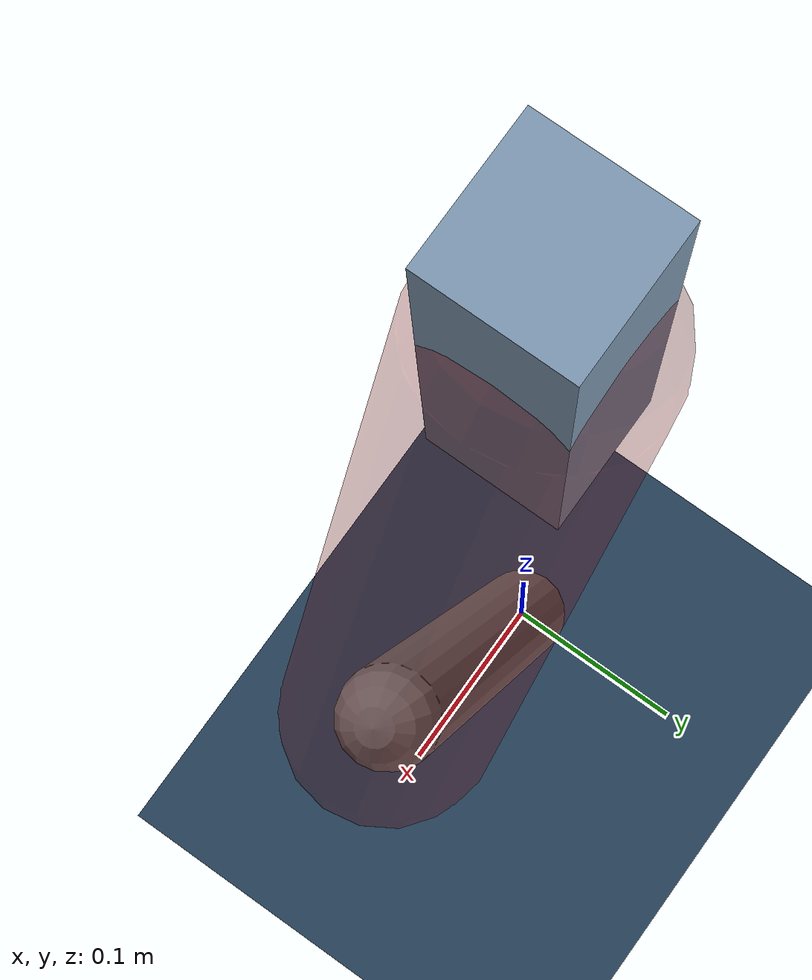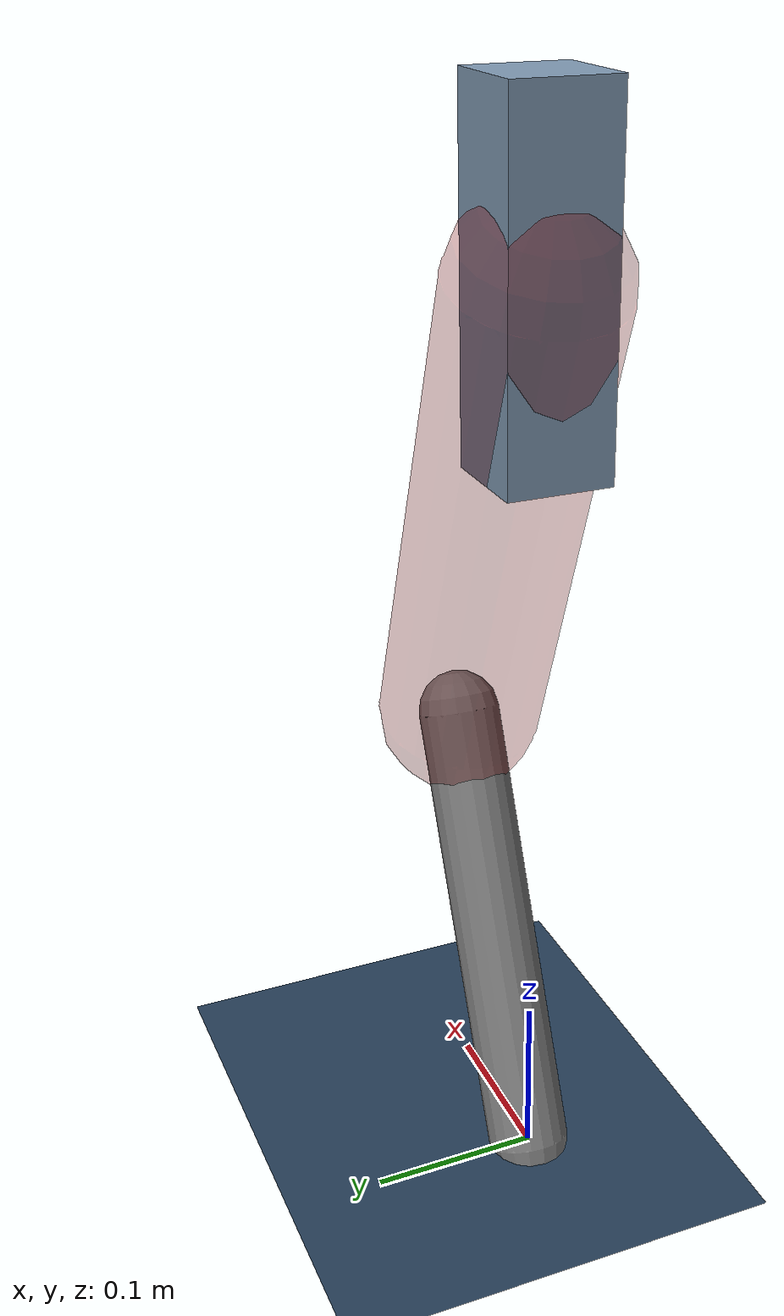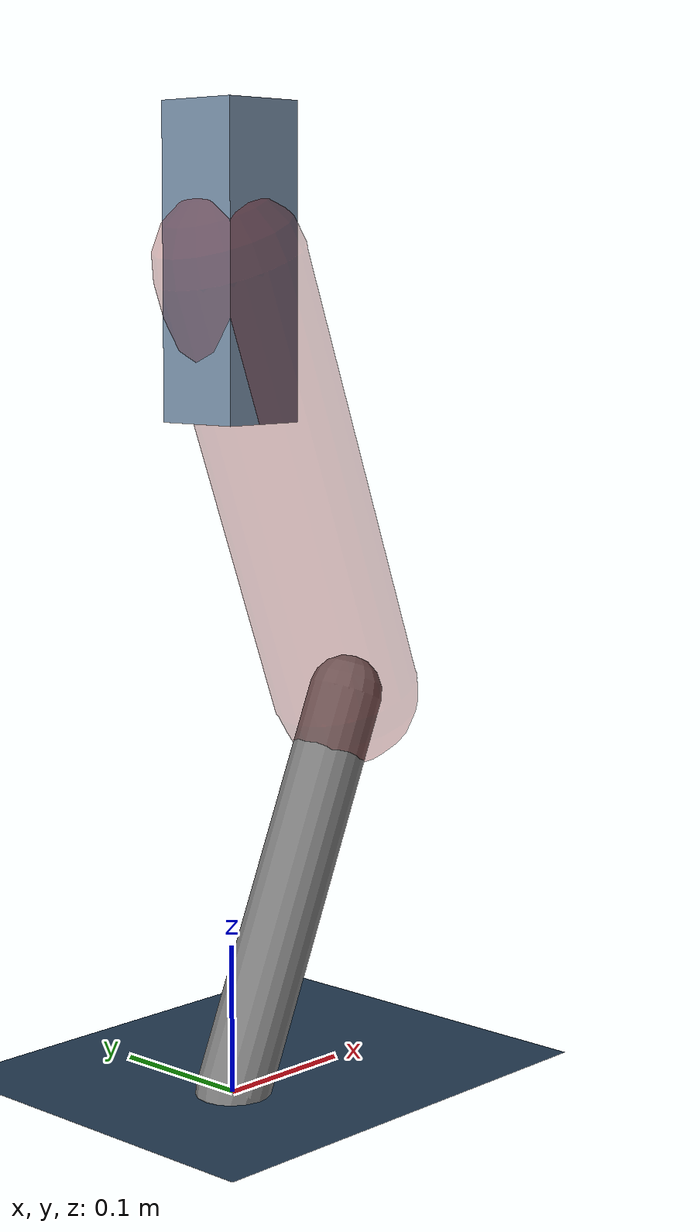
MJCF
<mujoco model="Hopper2D">
	<compiler inertiafromgeom="true" angle="radian" />
	<option timestep="0.001" integrator="implicit" cone="elliptic" solver="Newton" tolerance="1e-10" />

	<default>
		<geom contype="1" conaffinity="1" condim="3" friction="2 0.005 0.0001" solref="0.005 1" />
		<joint limited="true" damping="0.1" />
	</default>

	<asset>
		<texture name="skybox" type="skybox" builtin="gradient" rgb1=".4 .6 .8" rgb2="0 0 0" width="800" height="800" />
		<texture name="grid" type="2d" builtin="checker" rgb1=".1 .2 .3" rgb2=".2 .3 .4" width="300" height="300" mark="edge" markrgb=".2 .3 .4" />
		<material name="ground" texture="grid" texrepeat="1 1" texuniform="true" reflectance="0.1" />
		<material name="leg" rgba="0.5 0.6 0.7 1" />
	</asset>

	<worldbody>

		<geom name="floor" type="plane" size="5 5 0.25" material="ground" />

		<light directional="false" diffuse="0.8 0.8 0.8" specular="0.3 0.3 0.3" pos="0 0 2" dir="0 0 -1" />
		<light mode="targetbodycom" target="base" directional="false" diffuse="0.8 0.8 0.8" specular="0.3 0.3 0.3" pos="0 0 2" dir="0 0 -1" />

		<camera name="fixed" pos="0 -2 1" xyaxes="1 0 0 0 0 1" />
		<camera name="tracking" mode="trackcom" pos="0 -3 1" />

		<body name="root" pos="0 0 0.5437778866674932">
			<joint name="slide_x" type="slide" axis="1 0 0" range="-100 100" />
			<joint name="slide_z" type="slide" axis="0 0 1" range="0 10" />

			<body name="base" pos="0 0 0">
				<geom name="torso" type="box" size="0.03 0.03 0.1" mass="4.0809999999999995" material="leg" />

				<body name="link1" pos="0 0 0" euler="0 1.206537177872884 0">
					<joint type="hinge" axis="0 -1 0" pos="0 0 0" name="hinge1" limited="true" range="-3.14 3.14" stiffness="0" damping="0.1" />
					<geom name="thigh" type="capsule" fromto="0 0 0 0.30796552885220674 0 0" size="0.05" rgba="0.5 0 0 0.3" mass="1.0103069279009582" />

					<body name="link2" pos="0.30796552885220674 0 0" euler="0 0.7691267185084258 0">
						<joint type="hinge" axis="0 -1 0" pos="0 0 0" name="hinge2" limited="true" range="-3.14 3.14" stiffness="0" damping="0.1" />
						<geom name="shank" type="capsule" fromto="0 0 0 0.2785370554126574 0 0" size="0.025" mass="0.4659296443301259" />

					</body>
				</body>
			</body>
		</body>
	</worldbody>

	<actuator>
		<motor name="torque1" joint="hinge1" ctrlrange="-221.6082164304571 221.6082164304571" ctrllimited="true" gear="1" />
		<motor name="torque2" joint="hinge2" ctrlrange="-165.2129033442846 165.2129033442846" ctrllimited="true" gear="1" />
	</actuator>
</mujoco>
